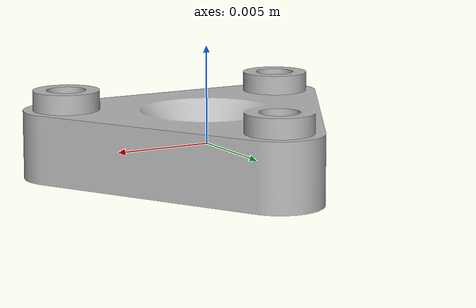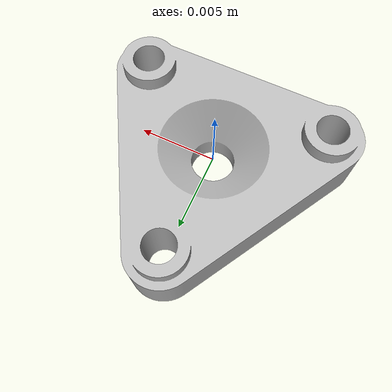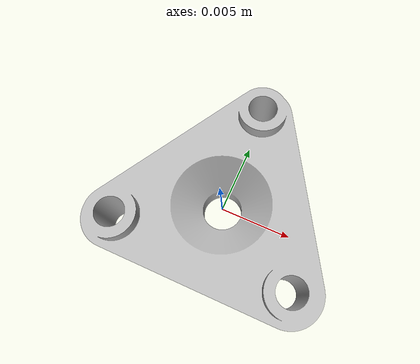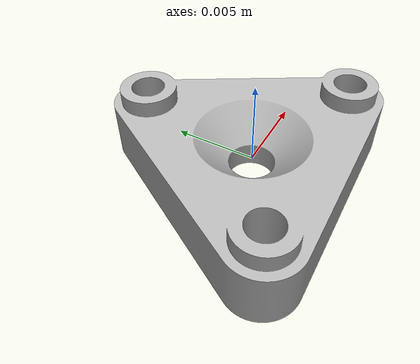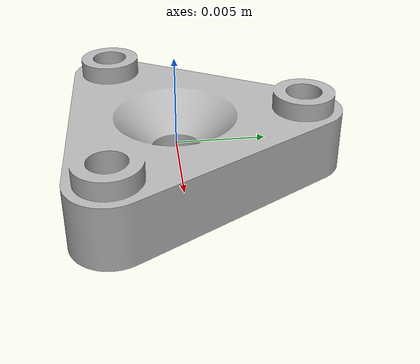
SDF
<?xml version="1.0" ?>
<sdf version="1.5">
  <model name="gear_carrier">
    <static>false</static>
    <link name="link">
      <collision name="collision">
        <geometry>
          <mesh>
            <scale>1 1 1</scale>
            <uri>model://Planetary/gear_carrier/gear_carrier.dae</uri>
          </mesh>
        </geometry>
      </collision>
      <visual name="visual">
        <geometry>
          <mesh>
            <scale>1 1 1</scale>
            <uri>model://Planetary/gear_carrier/gear_carrier.dae</uri>
          </mesh>
        </geometry>
      </visual>
    </link>
  </model>
</sdf>
